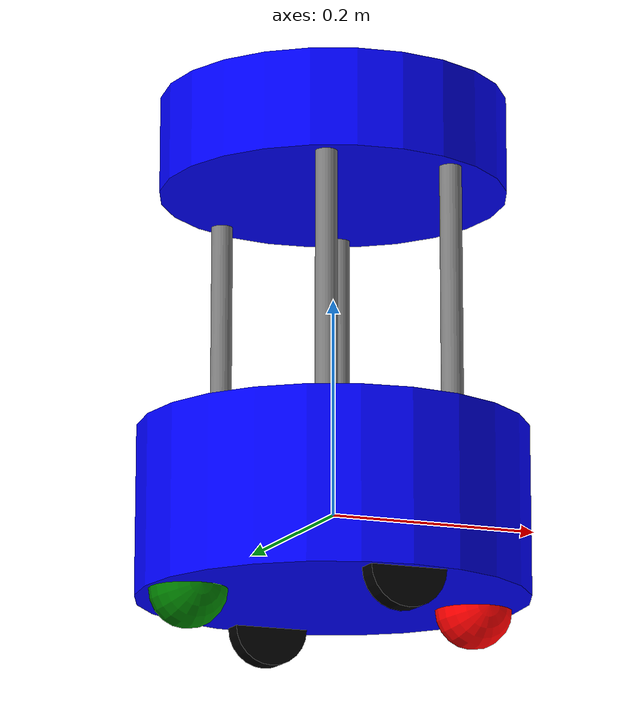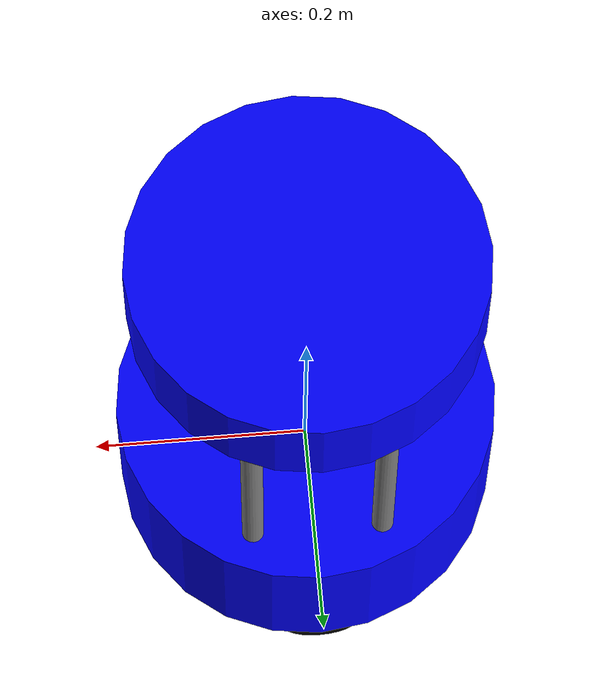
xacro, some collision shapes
<?xml version="1.0"?>
<robot xmlns:xacro="http://www.ros.org/wiki/xacro" name="barista_robot">

  <!-- Laser scanner -->
  <xacro:arg name="include_laser" default="true"/>
  <xacro:property name="include_laser" value="$(arg include_laser)"/>

  <!-- Robot color -->
  <xacro:arg name="robot_color" default="blue"/>
  <xacro:property name="robot_color" value="$(arg robot_color)"/>

  <!-- Robot name -->
  <xacro:arg name="robot_name" default="barista_bot"/>
  <xacro:property name="robot_name" value="$(arg robot_name)"/>

  <xacro:include filename="$(find barista_robot_description)/xacro/inertia_calculations.xacro"/>
  <xacro:include filename="$(find barista_robot_description)/xacro/drive_wheel.xacro" />
  <xacro:include filename="$(find barista_robot_description)/xacro/caster_wheel.xacro" />
  <xacro:include filename="$(find barista_robot_description)/xacro/standoff_rod.xacro" />
  <xacro:include filename="$(find barista_robot_description)/xacro/cup_holder_tray.xacro" />
  <xacro:include filename="$(find barista_robot_description)/xacro/laser_scanner.xacro" />

  <xacro:property name="body_radius" value="0.178"/>
  <xacro:property name="body_height" value="0.155"/>
  <xacro:property name="body_mass" value="0.5"/>
  <xacro:property name="wheel_width" value="0.0206"/>
  <xacro:property name="wheel_radius" value="0.0352"/>
  <xacro:property name="wheel_mass" value="0.05"/>
  <xacro:property name="wheel_rpy" value="1.5707 1.5707 0"/>
  <xacro:property name="standoff_rod_length" value="0.220"/>
  <xacro:property name="standoff_rod_radius" value="0.01"/>
  <xacro:property name="standoff_rod_mass" value="0.05"/>
  <xacro:property name="cupholder_tray_length" value="0.090"/>
  <xacro:property name="cupholder_tray_radius" value="0.160"/>
  <xacro:property name="cupholder_tray_mass" value="0.2"/>

  <material name="blue">
      <color rgba="0.0 0.0 1.0 1"/>
  </material>

  <material name="yellow">
      <color rgba="1.0 1.0 0.0 1"/>
  </material>

  <material name="red">
      <color rgba="1.0 0.0 0.0 1"/>
  </material>

  <material name="green_dark">
    <color rgba="0.0 0.5 0.0 1"/>
  </material>

  <material name="black">
      <color rgba="0.0 0.0 0.0 1"/>
  </material>

  <material name="grey">
      <color rgba="0.5 0.5 0.5 1"/>
  </material>

  <link name="base_link">
  </link>

  <!-- Body -->
  <link name="main_body">
    <visual>
      <geometry>
        <cylinder length="${body_height}" radius="${body_radius}"/>
      </geometry>
      <material name="${robot_color}"/>
    </visual>

    <collision>
      <geometry>
        <cylinder length="${body_height}" radius="${body_radius}"/>
      </geometry>
    </collision>

  <xacro:cylinder_inertia
      mass="${body_mass}"
      radius="${body_radius}"
      length="${body_height}"/>

  </link>

  <joint name="base_link_joint" type="fixed">
    <origin rpy="0 0 0" xyz="0 0 0" />
    <parent link="base_link" />
    <child link="main_body" />
  </joint>

  <!-- Left Wheel -->
  <xacro:wheel_macro
      wheel_name="left_wheel"
      radius="${wheel_radius}"
      length="${wheel_width}"
      mass="${wheel_mass}"
      rpy="${wheel_rpy}"
      parent_link="main_body"
      joint_xyz="0 0.158 -0.0775"/>

  <!-- Right Wheel -->
  <xacro:wheel_macro
      wheel_name="right_wheel"
      radius="${wheel_radius}"
      length="${wheel_width}"
      mass="${wheel_mass}"
      rpy="${wheel_rpy}"
      parent_link="main_body"
      joint_xyz="0 -0.158 -0.0775"/>

  <!-- Front Caster Wheel -->
  <xacro:caster_wheel_macro
      caster_wheel_name="front"
      radius="${wheel_radius}"
      caster_color="red"
      parent_link="main_body"
      joint_xyz="0.138 0 -0.0775"/>

  <!-- Rear Caster Wheel -->
  <xacro:caster_wheel_macro
      caster_wheel_name="back"
      radius="${wheel_radius}"
      caster_color="green_dark"
      parent_link="main_body"
      joint_xyz="-0.138 0 -0.0775"/>

  <!-- Standoff rod 1 -->
  <xacro:standoff_rod_macro
      standoff_rod_name="standoff_rod_1"
      radius="${standoff_rod_radius}"
      length="${standoff_rod_length}"
      mass="${standoff_rod_mass}"
      parent_link="main_body"
      joint_xyz="0.06 0.128 0.1875"/>

  <!-- Standoff rod 2 -->
  <xacro:standoff_rod_macro
      standoff_rod_name="standoff_rod_2"
      radius="${standoff_rod_radius}"
      length="${standoff_rod_length}"
      mass="${standoff_rod_mass}"
      parent_link="main_body"
      joint_xyz="-0.06 0.128 0.1875"/>

  <!-- Standoff rod 3 -->
  <xacro:standoff_rod_macro
      standoff_rod_name="standoff_rod_3"
      radius="${standoff_rod_radius}"
      length="${standoff_rod_length}"
      mass="${standoff_rod_mass}"
      parent_link="main_body"
      joint_xyz="0.06 -0.128 0.1875"/>

  <!-- Standoff rod 4 -->
  <xacro:standoff_rod_macro
      standoff_rod_name="standoff_rod_4"
      radius="${standoff_rod_radius}"
      length="${standoff_rod_length}"
      mass="${standoff_rod_mass}"
      parent_link="main_body"
      joint_xyz="-0.06 -0.128 0.1875"/>

  <!-- Cupholder tray -->
  <xacro:cupholder_tray_macro
      radius="${cupholder_tray_radius}"
      length="${cupholder_tray_length}"
      mass="${cupholder_tray_mass}"
      parent_link="main_body"
      joint_xyz="0 0 0.3425"
      robot_color="${robot_color}"/>

  <!-- Differential Drive Plugin -->
  <gazebo>
    <plugin
        filename="gz-sim-diff-drive-system"
        name="gz::sim::systems::DiffDrive">
        <left_joint>joint_left_wheel</left_joint>
        <right_joint>joint_right_wheel</right_joint>
        <wheel_separation>0.316</wheel_separation>
        <wheel_radius>0.0352</wheel_radius>
        <topic>${robot_name}/cmd_vel</topic>
        <publish_odom>true</publish_odom>
        <publish_odom_tf>true</publish_odom_tf>
        <publish_wheel_tf>true</publish_wheel_tf>
        <odom_topic>${robot_name}/odom</odom_topic>
        <tf_topic>tf</tf_topic>
        <frame_id>${robot_name}/odom</frame_id>
        <child_frame_id>${robot_name}/base_link</child_frame_id>
    </plugin>
  </gazebo>

  <!-- Joint state publisher plugin -->
  <gazebo>
    <plugin filename="gz-sim-joint-state-publisher-system"
            name="gz::sim::systems::JointStatePublisher">
        <topic>${robot_name}/joint_states</topic>
        <update_rate>30</update_rate>
        <!-- Publish the state of these joints -->
        <joint_name>joint_left_wheel</joint_name>
        <joint_name>joint_right_wheel</joint_name>
        <joint_name>front_yaw_joint</joint_name>
        <joint_name>back_yaw_joint</joint_name>
        <joint_name>front_roll_joint</joint_name>
        <joint_name>back_roll_joint</joint_name>
        <joint_name>front_pitch_joint</joint_name>
        <joint_name>back_pitch_joint</joint_name>
    </plugin>
  </gazebo>

</robot>

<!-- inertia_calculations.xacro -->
<robot xmlns:xacro="http://www.ros.org/wiki/xacro">

<xacro:macro name="cylinder_inertia"
             params="mass radius length xyz:='0 0 0' rpy:='0 0 0'">
  <inertial>
    <origin xyz="${xyz}" rpy="${rpy}"/>
    <mass value="${mass}"/>
    <inertia
      ixx="${mass * (3*radius*radius + length*length) / 12.0}"
      ixy="0.0"
      ixz="0.0"
      iyy="${mass * (3*radius*radius + length*length) / 12.0}"
      iyz="0.0"
      izz="${0.5 * mass * radius * radius}"/>
  </inertial>
</xacro:macro>

<xacro:macro name="sphere_inertia"
             params="mass radius xyz:='0 0 0' rpy:='0 0 0'">
  <inertial>
    <origin xyz="${xyz}" rpy="${rpy}"/>
    <mass value="${mass}"/>
    <inertia
      ixx="${mass * (2*radius*radius ) / 5.0}"
      ixy="0.0"
      ixz="0.0"
      iyy="${mass * (2*radius*radius ) / 5.0}"
      iyz="0.0"
      izz="${mass * (2*radius*radius ) / 5.0}"/>
  </inertial>
</xacro:macro>

</robot>

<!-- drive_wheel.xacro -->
<robot xmlns:xacro="http://www.ros.org/wiki/xacro">

  <xacro:include filename="$(find barista_robot_description)/xacro/inertia_calculations.xacro"/>

  <xacro:macro name="wheel_macro" params="wheel_name parent_link joint_xyz radius length mass xyz:='0 0 0' rpy:='0 0 0'">
    <link name="${wheel_name}">
        <visual>
            <origin rpy="${rpy}" xyz="${xyz}"/>
            <geometry>
              <cylinder length="${length}" radius="${radius}"/>
            </geometry>
            <material name="black"/>
        </visual>

        <collision>
            <origin rpy="${rpy}" xyz="${xyz}"/>
            <geometry>
              <cylinder length="${length}" radius="${radius}"/>
            </geometry>
        </collision>

    <xacro:cylinder_inertia
      mass="${mass}"
      radius="${radius}"
      length="${length}"/>

    </link>

  <joint name="joint_${wheel_name}" type="continuous">
    <origin rpy="0 0 0" xyz="${joint_xyz}"/>
    <child link="${wheel_name}"/>
    <parent link="${parent_link}"/>
    <axis rpy="0 0 0" xyz="0 1 0"/>
    <limit effort="10000" velocity="1000"/>
    <joint_properties damping="1.0" friction="1.0"/>
  </joint>

    <gazebo reference="${wheel_name}">
        <collision>
            <surface>
            <friction>
                <ode>
                <mu>10.0</mu>
                <mu2>10.0</mu2>
                </ode>
            </friction>
            <contact>
                <ode>
                <kp>10000000.0</kp>
                <kd>10000000.0</kd>
                </ode>
            </contact>
            </surface>
        </collision>
    </gazebo>
  </xacro:macro>

</robot>

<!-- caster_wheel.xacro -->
<robot xmlns:xacro="http://www.ros.org/wiki/xacro">

  <xacro:include filename="$(find barista_robot_description)/xacro/inertia_calculations.xacro"/>
  <xacro:macro name="caster_wheel_macro" params="caster_wheel_name parent_link joint_xyz radius caster_color">

    <link name="${caster_wheel_name}_yaw_link">
        <visual>
            <origin rpy="0 1.5707 1.5707" xyz="0 0 0"/>
            <geometry>
            <cylinder length="0.001" radius="0.0045000000000000005"/>
            </geometry>
            <material name="blue"/>
        </visual>

        <collision>
            <origin rpy="0 1.5707 1.5707" xyz="0 0 0"/>
            <geometry>
            <cylinder length="0.001" radius="0.0045000000000000005"/>
            </geometry>
        </collision>

        <xacro:cylinder_inertia
        mass="0.001"
        radius="0.0045000000000000005"
        length="0.001"
        rpy="0 1.5707 1.5707"/>

    </link>

    <joint name="${caster_wheel_name}_yaw_joint" type="continuous">
        <origin rpy="0 0 0" xyz="${joint_xyz}" />
        <parent link="${parent_link}" />
        <child link="${caster_wheel_name}_yaw_link" />
        <axis xyz="0 0 1" />
        <limit effort="1000.0" velocity="100.0" />
        <dynamics damping="0.0" friction="0.1"/>
    </joint>

    <link name="${caster_wheel_name}_roll_link">
        <visual>
            <origin rpy="0 1.5707 1.5707" xyz="0 0 0"/>
            <geometry>
            <cylinder length="0.001" radius="0.0045000000000000005"/>
            </geometry>
            <material name="yellow"/>
        </visual>

        <collision>
            <origin rpy="0 1.5707 1.5707" xyz="0 0 0"/>
            <geometry>
            <cylinder length="0.001" radius="0.0045000000000000005"/>
            </geometry>
        </collision>

        <xacro:cylinder_inertia
        mass="0.001"
        radius="0.0045000000000000005"
        length="0.001"
        rpy="0 1.5707 1.5707"/>

    </link>

    <joint name="${caster_wheel_name}_roll_joint" type="continuous">
        <origin rpy="0 0 0" xyz="0 0 0" />
        <parent link="${caster_wheel_name}_yaw_link" />
        <child link="${caster_wheel_name}_roll_link" />
        <axis xyz="1 0 0" />
        <limit effort="1000.0" velocity="100.0" />
        <dynamics damping="0.0" friction="0.1"/>
    </joint>

    <link name="${caster_wheel_name}_pitch_link">
        <visual>
        <origin rpy="0 1.5707 1.5707" xyz="0 0 0"/>
        <geometry>
            <sphere radius="${radius}"/>
        </geometry>
        <material name="${caster_color}"/>
        </visual>

        <collision>
        <origin rpy="0 1.5707 1.5707" xyz="0 0 0"/>
        <geometry>
            <sphere radius="${radius}"/>
        </geometry>
        </collision>

        <xacro:sphere_inertia
        mass="0.010"
        radius="${radius}"
        rpy="0 1.5707 1.5707"/>

    </link>

    <gazebo reference="${caster_wheel_name}_pitch_link">
        <collision>
            <surface>
            <friction>
                <ode>
                <mu>0.5</mu>
                <mu2>0.5</mu2>
                </ode>
            </friction>
            <contact>
                <ode>
                <kp>10000000.0</kp>
                <kd>10000000.0</kd>
                </ode>
            </contact>
            </surface>
        </collision>
    </gazebo>

    <joint name="${caster_wheel_name}_pitch_joint" type="continuous">
        <origin rpy="0 0 0" xyz="0 0 0" />
        <parent link="${caster_wheel_name}_roll_link" />
        <child link="${caster_wheel_name}_pitch_link" />
        <axis xyz="0 1 0" />
        <limit effort="1000.0" velocity="100.0" />
        <dynamics damping="0.0" friction="0.1"/>
    </joint>
  </xacro:macro>

</robot>

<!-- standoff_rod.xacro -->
<robot xmlns:xacro="http://www.ros.org/wiki/xacro">

  <xacro:include filename="$(find barista_robot_description)/xacro/inertia_calculations.xacro"/>

  <xacro:macro name="standoff_rod_macro" params="standoff_rod_name parent_link joint_xyz length radius mass">
    <link name="${standoff_rod_name}_link">
        <visual>
        <geometry>
            <cylinder length="${length}" radius="${radius}"/>
        </geometry>
        <material name="grey"/>
        </visual>

        <collision>
        <geometry>
            <cylinder length="${length}" radius="${radius}"/>
        </geometry>
        </collision>

        <xacro:cylinder_inertia
        mass="${mass}"
        radius="${radius}"
        length="${length}"/>

    </link>

    <joint name="${standoff_rod_name}_joint" type="fixed">
        <origin rpy="0 0 0" xyz="${joint_xyz}" />
        <parent link="${parent_link}" />
        <child link="${standoff_rod_name}_link" />
    </joint>
  </xacro:macro>

</robot>

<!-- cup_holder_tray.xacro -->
<robot xmlns:xacro="http://www.ros.org/wiki/xacro">

  <xacro:include filename="$(find barista_robot_description)/xacro/inertia_calculations.xacro"/>

  <xacro:macro name="cupholder_tray_macro" params="parent_link joint_xyz length radius mass robot_color">

    <link name="cupholder_tray_link">
    <visual>
        <geometry>
        <cylinder length="${length}" radius="${radius}"/>
        </geometry>
        <material name="${robot_color}"></material>
    </visual>

    <collision>
        <geometry>
        <cylinder length="${length}" radius="${radius}"/>
        </geometry>
    </collision>

    <xacro:cylinder_inertia
      mass="${mass}"
      radius="${radius}"
      length="${length}"/>

    </link>

    <joint name="cupholder_tray_link_joint" type="fixed">
    <origin rpy="0 0 0" xyz= "${joint_xyz}" />
    <parent link="${parent_link}" />
    <child link="cupholder_tray_link" />
    </joint>

  </xacro:macro>

</robot>

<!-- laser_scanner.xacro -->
<robot xmlns:xacro="http://www.ros.org/wiki/xacro">

  <xacro:if value="${include_laser}">

 <!-- Lidar -->
    <link name="laser_scan_link">
        <visual>
        <geometry>
            <mesh filename="package://barista_robot_description/meshes/velodyne_puck.dae" scale="1 1 1"/>
        </geometry>
        </visual>

        <collision>
        <geometry>
            <box size="0.01 0.01 0.01"/>
        </geometry>
        </collision>

        <inertial>
        <mass value="0.1"/>
        <origin rpy="0 0 0" xyz="0 0 0"/>
        <inertia ixx="1.67e-06" ixy="0" ixz="0" iyy="1.67e-06" iyz="0" izz="1.67e-06"/>
        </inertial>

    </link>

    <joint name="laser_scan_joint" type="fixed">
        <origin rpy="0 0 0" xyz="0.118 0 0.0775"  />
        <parent link="main_body" />
        <child link="laser_scan_link" />
    </joint>

    <link name="laser_scan_frame">
    </link>

    <joint name="laser_scan_frame_joint" type="fixed">
        <origin rpy="0 0 0" xyz="0 0 0.04"/>
        <parent link="laser_scan_link"/>
        <child link="laser_scan_frame"/>
        <axis xyz="0 0 0"/>
    </joint>

    <!-- Laser Scanner Plugin -->
    <gazebo reference="laser_scan_frame">
        <sensor type="gpu_lidar" name="gpu_lidar">
            <pose relative_to='laser_scan_frame'>0 0 0 0 0 0</pose>
            <gz_frame_id>${robot_name}/laser_scan_frame</gz_frame_id>
            <always_on>1</always_on>
            <visualize>true</visualize>
            <update_rate>100</update_rate>
            <topic>${robot_name}/laser_scan</topic>
            <ray>
                <scan>
                    <horizontal>
                        <samples>200</samples>
                        <resolution>1</resolution>
                        <min_angle>-3.14</min_angle>
                        <max_angle>3.14</max_angle>
                    </horizontal>
                </scan>
                <range>
                    <min>0.1</min>
                    <max>5.0</max>
                    <resolution>0.01</resolution>
                </range>
            </ray>
        </sensor>
    </gazebo>

  </xacro:if>

</robot>
